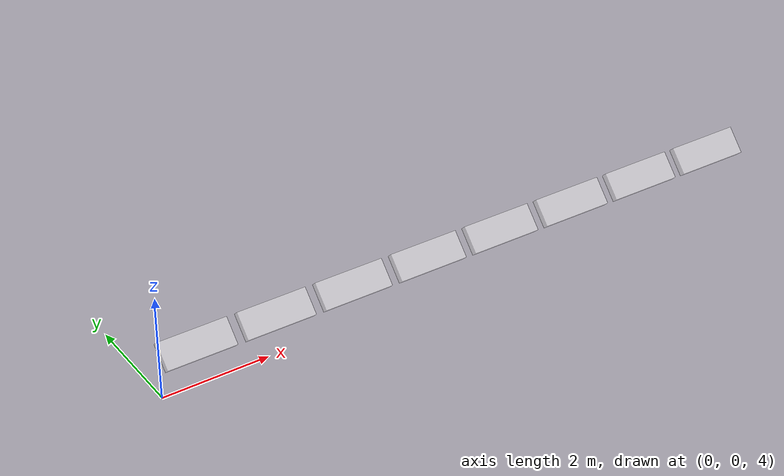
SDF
<?xml version='1.0'?>
<sdf version='1.7'>
  <model name='light'>
    <link name='link_1'>
      <self_collide>0</self_collide>
      <enable_wind>0</enable_wind>
      <kinematic>0</kinematic>
      <pose>0.8 0.25 4.6 0.785 -0 0</pose>
      <gravity>1</gravity>
      <visual name='visual'>
        <geometry>
          <box>
            <size>1.3 0.5 0.15</size>
          </box>
        </geometry>
        <material>
          <script>
            <name>Gazebo/White</name>
            <uri>file://media/materials/scripts/gazebo.material</uri>
          </script>
          <shader type='pixel'>
            <normal_map>__default__</normal_map>
          </shader>
          <ambient>0.8 0.8 0.8 1</ambient>
          <diffuse>1.0 1.0 1.0 1</diffuse>
          <specular>0.2 0.2 0.2 1</specular>
          <emissive>0.5 0.5 0.5 1</emissive>
        </material>
        <pose>0 0 0 0 -0 0</pose>
        <transparency>0.5</transparency>
        <cast_shadows>1</cast_shadows>
      </visual>
    </link>
    <link name='link_2'>
      <self_collide>0</self_collide>
      <enable_wind>0</enable_wind>
      <kinematic>0</kinematic>
      <pose>2.3 0.25 4.6 0.785 -0 0</pose>
      <gravity>1</gravity>
      <visual name='visual'>
        <geometry>
          <box>
            <size>1.3 0.5 0.15</size>
          </box>
        </geometry>
        <material>
          <script>
            <name>Gazebo/White</name>
            <uri>file://media/materials/scripts/gazebo.material</uri>
          </script>
          <shader type='pixel'>
            <normal_map>__default__</normal_map>
          </shader>
          <ambient>0.8 0.8 0.8 1</ambient>
          <diffuse>1.0 1.0 1.0 1</diffuse>
          <specular>0.2 0.2 0.2 1</specular>
          <emissive>0.5 0.5 0.5 1</emissive>
        </material>
        <pose>0 0 0 0 -0 0</pose>
        <transparency>0.5</transparency>
        <cast_shadows>1</cast_shadows>
      </visual>
    </link>
    <link name='link_3'>
      <self_collide>0</self_collide>
      <enable_wind>0</enable_wind>
      <kinematic>0</kinematic>
      <pose>3.8 0.25 4.6 0.785 -0 0</pose>
      <gravity>1</gravity>
      <visual name='visual'>
        <geometry>
          <box>
            <size>1.3 0.5 0.15</size>
          </box>
        </geometry>
        <material>
          <script>
            <name>Gazebo/White</name>
            <uri>file://media/materials/scripts/gazebo.material</uri>
          </script>
          <shader type='pixel'>
            <normal_map>__default__</normal_map>
          </shader>
          <ambient>0.8 0.8 0.8 1</ambient>
          <diffuse>1.0 1.0 1.0 1</diffuse>
          <specular>0.2 0.2 0.2 1</specular>
          <emissive>0.5 0.5 0.5 1</emissive>
        </material>
        <pose>0 0 0 0 -0 0</pose>
        <transparency>0.5</transparency>
        <cast_shadows>1</cast_shadows>
      </visual>
    </link>
    <link name='link_4'>
      <self_collide>0</self_collide>
      <enable_wind>0</enable_wind>
      <kinematic>0</kinematic>
      <pose>5.3 0.25 4.6 0.785 -0 0</pose>
      <gravity>1</gravity>
      <visual name='visual'>
        <geometry>
          <box>
            <size>1.3 0.5 0.15</size>
          </box>
        </geometry>
        <material>
          <script>
            <name>Gazebo/White</name>
            <uri>file://media/materials/scripts/gazebo.material</uri>
          </script>
          <shader type='pixel'>
            <normal_map>__default__</normal_map>
          </shader>
          <ambient>0.8 0.8 0.8 1</ambient>
          <diffuse>1.0 1.0 1.0 1</diffuse>
          <specular>0.2 0.2 0.2 1</specular>
          <emissive>0.5 0.5 0.5 1</emissive>
        </material>
        <pose>0 0 0 0 -0 0</pose>
        <transparency>0.5</transparency>
        <cast_shadows>1</cast_shadows>
      </visual>
    </link>
    <link name='link_5'>
      <self_collide>0</self_collide>
      <enable_wind>0</enable_wind>
      <kinematic>0</kinematic>
      <pose>6.8 0.25 4.6 0.785 -0 0</pose>
      <gravity>1</gravity>
      <visual name='visual'>
        <geometry>
          <box>
            <size>1.3 0.5 0.15</size>
          </box>
        </geometry>
        <material>
          <script>
            <name>Gazebo/White</name>
            <uri>file://media/materials/scripts/gazebo.material</uri>
          </script>
          <shader type='pixel'>
            <normal_map>__default__</normal_map>
          </shader>
          <ambient>0.8 0.8 0.8 1</ambient>
          <diffuse>1.0 1.0 1.0 1</diffuse>
          <specular>0.2 0.2 0.2 1</specular>
          <emissive>0.5 0.5 0.5 1</emissive>
        </material>
        <pose>0 0 0 0 -0 0</pose>
        <transparency>0.5</transparency>
        <cast_shadows>1</cast_shadows>
      </visual>
    </link>
    <link name='link_6'>
      <self_collide>0</self_collide>
      <enable_wind>0</enable_wind>
      <kinematic>0</kinematic>
      <pose>8.3 0.25 4.6 0.785 -0 0</pose>
      <gravity>1</gravity>
      <visual name='visual'>
        <geometry>
          <box>
            <size>1.3 0.5 0.15</size>
          </box>
        </geometry>
        <material>
          <script>
            <name>Gazebo/White</name>
            <uri>file://media/materials/scripts/gazebo.material</uri>
          </script>
          <shader type='pixel'>
            <normal_map>__default__</normal_map>
          </shader>
          <ambient>0.8 0.8 0.8 1</ambient>
          <diffuse>1.0 1.0 1.0 1</diffuse>
          <specular>0.2 0.2 0.2 1</specular>
          <emissive>0.5 0.5 0.5 1</emissive>
        </material>
        <pose>0 0 0 0 -0 0</pose>
        <transparency>0.5</transparency>
        <cast_shadows>1</cast_shadows>
      </visual>
    </link>
    <link name='link_7'>
      <self_collide>0</self_collide>
      <enable_wind>0</enable_wind>
      <kinematic>0</kinematic>
      <pose>9.8 0.25 4.6 0.785 -0 0</pose>
      <gravity>1</gravity>
      <visual name='visual'>
        <geometry>
          <box>
            <size>1.3 0.5 0.15</size>
          </box>
        </geometry>
        <material>
          <script>
            <name>Gazebo/White</name>
            <uri>file://media/materials/scripts/gazebo.material</uri>
          </script>
          <shader type='pixel'>
            <normal_map>__default__</normal_map>
          </shader>
          <ambient>0.8 0.8 0.8 1</ambient>
          <diffuse>1.0 1.0 1.0 1</diffuse>
          <specular>0.2 0.2 0.2 1</specular>
          <emissive>0.5 0.5 0.5 1</emissive>
        </material>
        <pose>0 0 0 0 -0 0</pose>
        <transparency>0.5</transparency>
        <cast_shadows>1</cast_shadows>
      </visual>
    </link>
    <link name='link_8'>
      <self_collide>0</self_collide>
      <enable_wind>0</enable_wind>
      <kinematic>0</kinematic>
      <pose>11.3 0.25 4.6 0.785 -0 0</pose>
      <gravity>1</gravity>
      <visual name='visual'>
        <geometry>
          <box>
            <size>1.3 0.5 0.15</size>
          </box>
        </geometry>
        <material>
          <script>
            <name>Gazebo/White</name>
            <uri>file://media/materials/scripts/gazebo.material</uri>
          </script>
          <shader type='pixel'>
            <normal_map>__default__</normal_map>
          </shader>
          <ambient>0.8 0.8 0.8 1</ambient>
          <diffuse>1.0 1.0 1.0 1</diffuse>
          <specular>0.2 0.2 0.2 1</specular>
          <emissive>0.5 0.5 0.5 1</emissive>
        </material>
        <pose>0 0 0 0 -0 0</pose>
        <transparency>0.5</transparency>
        <cast_shadows>1</cast_shadows>
      </visual>
    </link>
    <static>0</static>
    <allow_auto_disable>1</allow_auto_disable>
  </model>
</sdf>
